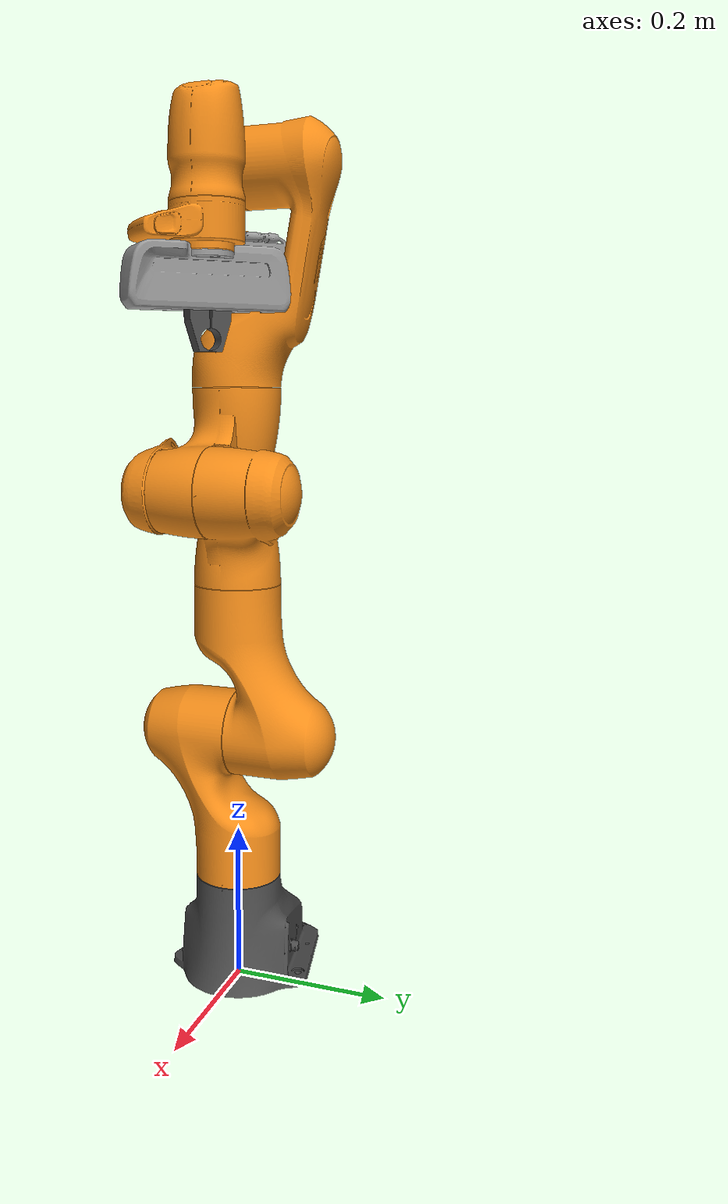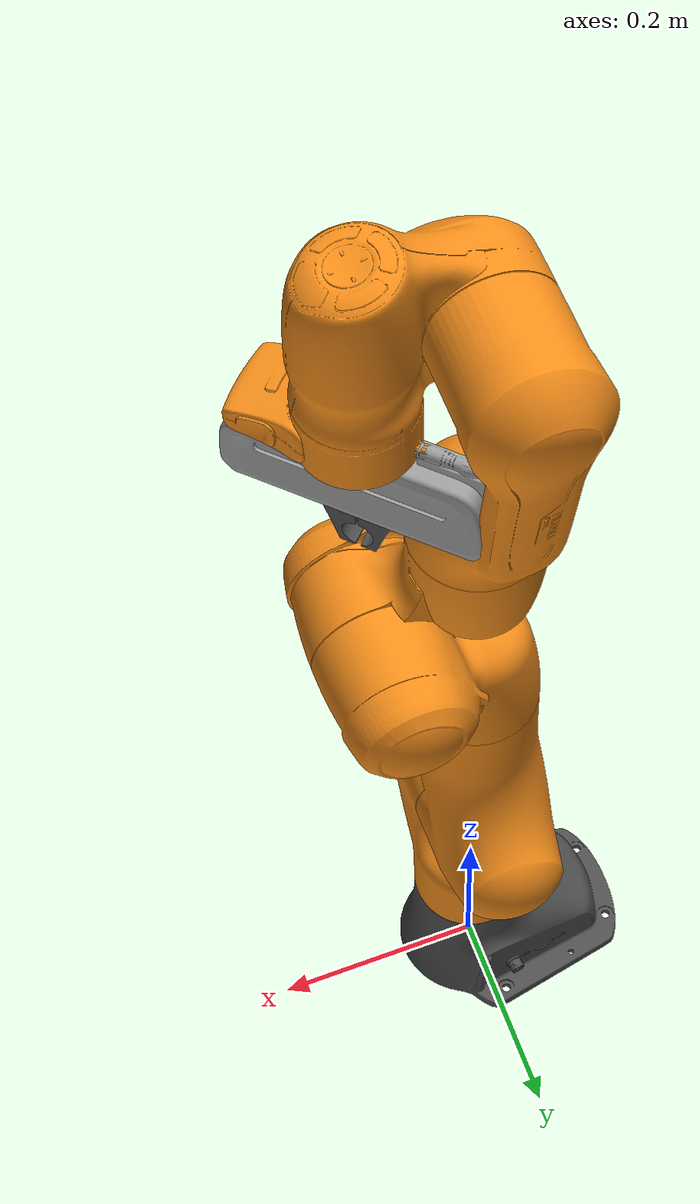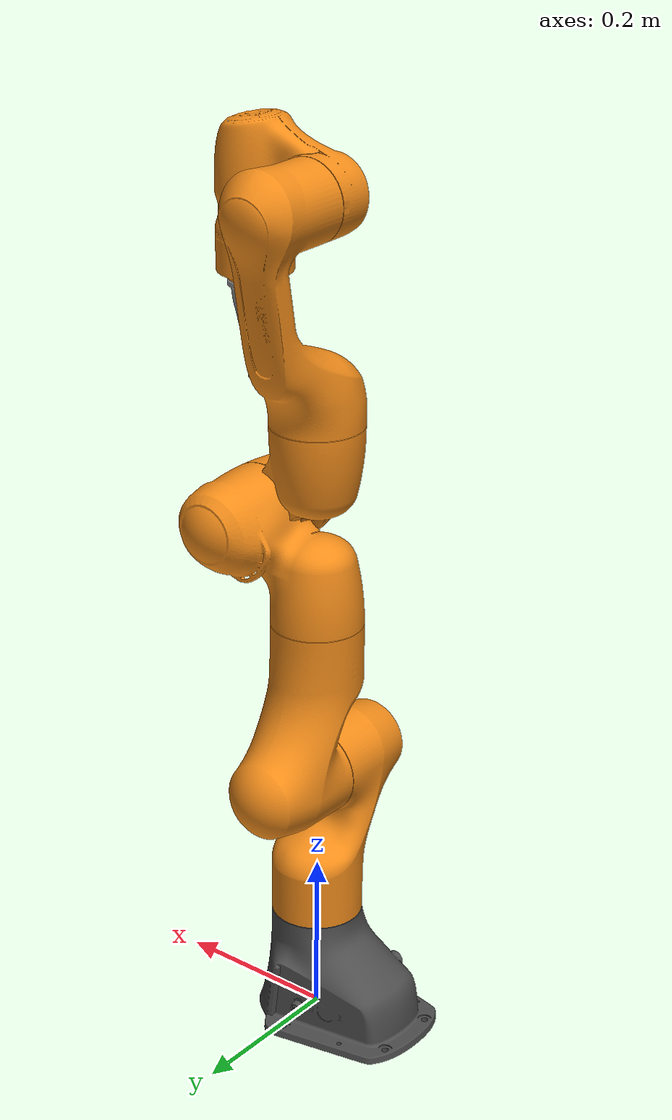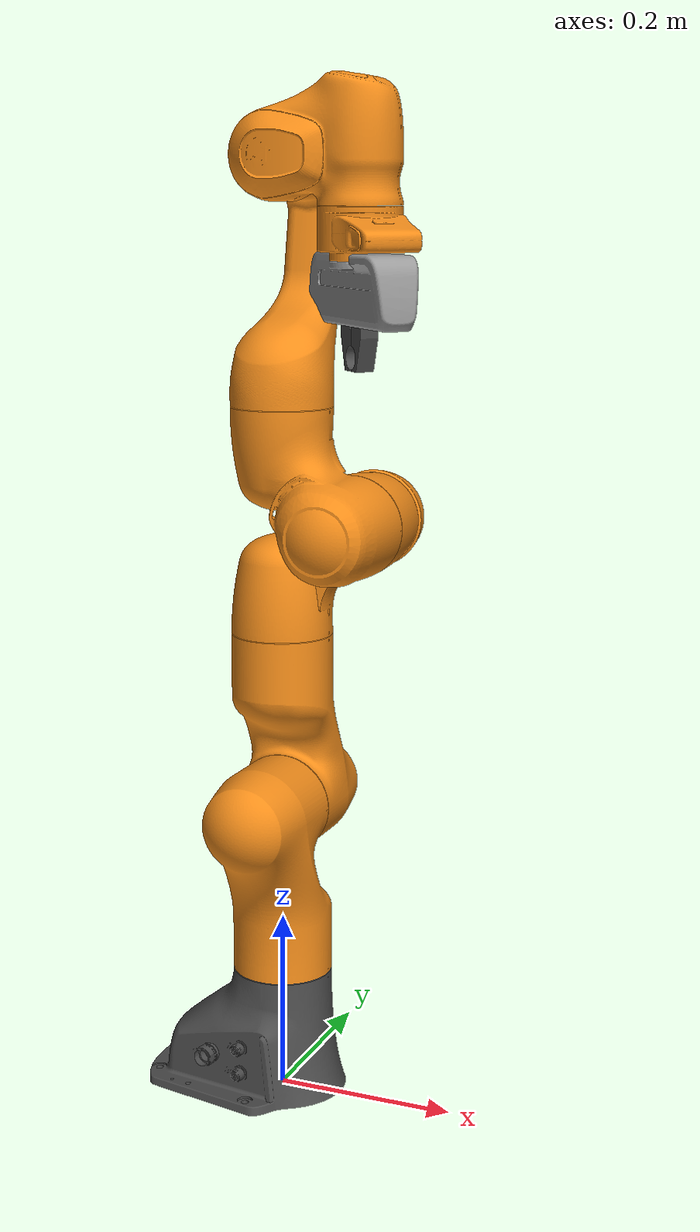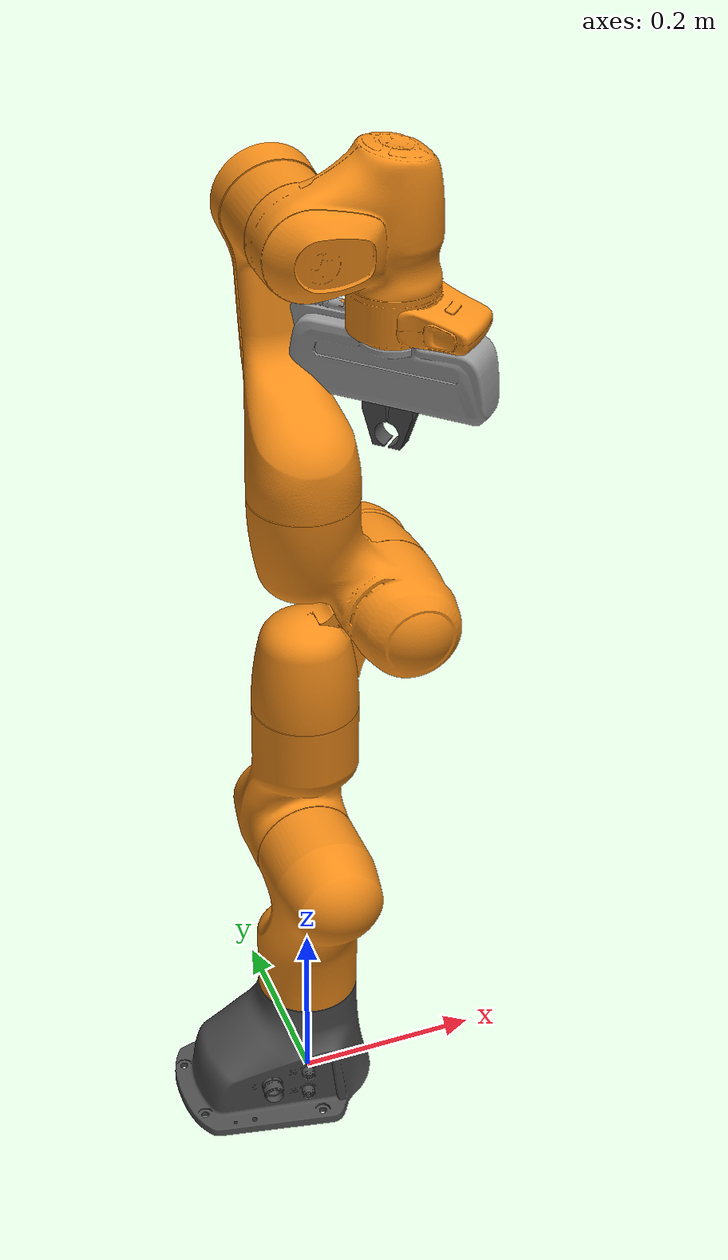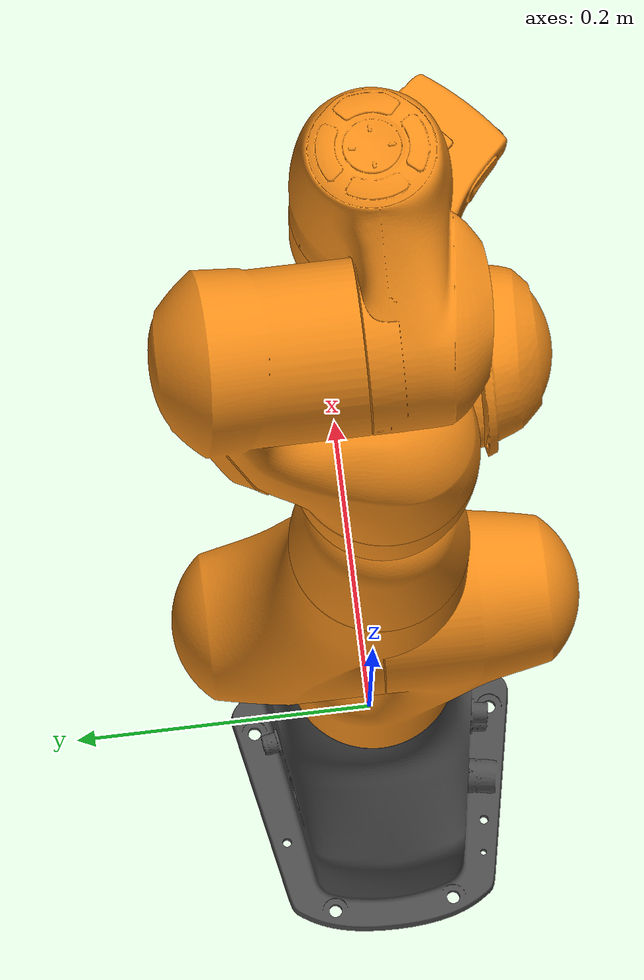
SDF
<?xml version="1.0"?>
<sdf version='1.7'>
  <model name='panda'>
    <joint name='panda_joint_world' type='fixed'>
      <pose relative_to='__model__'>0 0 0 0 -0 0</pose>
      <parent>world</parent>
      <child>panda_link0</child>
    </joint>
    <link name='panda_link0'>
      <pose relative_to='panda_joint_world'>0 0 0 0 -0 0</pose>
      <inertial>
        <pose>-0.025566 -2.9e-05 0.057332 0 -0 0</pose>
        <mass>2.81427</mass>
        <inertia>
          <ixx>0.00753906</ixx>
          <ixy>-1.50531e-05</ixy>
          <ixz>-0.00121443</ixz>
          <iyy>0.010508</iyy>
          <iyz>1.04348e-05</iyz>
          <izz>0.00986493</izz>
        </inertia>
      </inertial>
      <collision name='panda_link0_collision_collision'>
        <pose>0 0 0 0 -0 0</pose>
        <geometry>
          <mesh>
            <scale>1 1 1</scale>
            <uri>model://robot_description/meshes/collision/link0.stl</uri>
          </mesh>
        </geometry>
        <surface>
          <contact>
            <ode/>
          </contact>
          <friction>
            <ode>
              <mu>1.05</mu>
              <mu2>1.05</mu2>
            </ode>
          </friction>
        </surface>
      </collision>
      <visual name='panda_link0_visual_visual'>
        <pose>0 0 0 0 -0 0</pose>
        <geometry>
          <mesh>
            <scale>1 1 1</scale>
            <uri>model://robot_description/meshes/visual/link0.dae</uri>
          </mesh>
        </geometry>
        <material>
          <script>
            <name>Gazebo/DarkGrey</name>
            <uri>file://media/materials/scripts/gazebo.material</uri>
          </script>
        </material>
      </visual>
      <gravity>1</gravity>
      <velocity_decay/>
    </link>
    <joint name='panda_joint1' type='revolute'>
      <pose relative_to='panda_link0'>0 0 0.333 0 -0 0</pose>
      <parent>panda_link0</parent>
      <child>panda_link1</child>
      <axis>
        <xyz>0 0 1</xyz>
        <limit>
          <lower>-2.89725</lower>
          <upper>2.89725</upper>
          <effort>87</effort>
          <velocity>2.61799</velocity>
        </limit>
        <dynamics>
          <damping>21.75</damping>
          <friction>3.48</friction>
          <spring_reference>0</spring_reference>
          <spring_stiffness>0</spring_stiffness>
        </dynamics>
      </axis>
    </joint>
    <link name='panda_link1'>
      <pose relative_to='panda_joint1'>0 0 0 0 -0 0</pose>
      <inertial>
        <pose>-0 -0.032496 -0.067582 0 -0 0</pose>
        <mass>2.64332</mass>
        <inertia>
          <ixx>0.0174051</ixx>
          <ixy>-8.68799e-09</ixy>
          <ixz>-1.62778e-08</ixz>
          <iyy>0.0153521</iyy>
          <iyz>0.00451086</iyz>
          <izz>0.00598789</izz>
        </inertia>
      </inertial>
      <collision name='panda_link1_collision_collision'>
        <pose>0 0 0 0 -0 0</pose>
        <geometry>
          <mesh>
            <scale>1 1 1</scale>
            <uri>model://robot_description/meshes/collision/link1.stl</uri>
          </mesh>
        </geometry>
        <surface>
          <contact>
            <ode/>
          </contact>
          <friction>
            <ode>
              <mu>1.05</mu>
              <mu2>1.05</mu2>
            </ode>
          </friction>
        </surface>
      </collision>
      <visual name='panda_link1_visual_visual'>
        <pose>0 0 0 0 -0 0</pose>
        <geometry>
          <mesh>
            <scale>1 1 1</scale>
            <uri>model://robot_description/meshes/visual/link1.dae</uri>
          </mesh>
        </geometry>
        <material>
          <script>
            <name>Gazebo/Orange</name>
            <uri>file://media/materials/scripts/gazebo.material</uri>
          </script>
        </material>
      </visual>
      <gravity>1</gravity>
      <velocity_decay/>
    </link>
    <joint name='panda_joint2' type='revolute'>
      <pose relative_to='panda_link1'>0 0 0 -1.5708 0 0</pose>
      <parent>panda_link1</parent>
      <child>panda_link2</child>
      <axis>
        <xyz>0 0 1</xyz>
        <limit>
          <lower>-1.76278</lower>
          <upper>1.76278</upper>
          <effort>87</effort>
          <velocity>2.61799</velocity>
        </limit>
        <dynamics>
          <damping>21.75</damping>
          <friction>3.48</friction>
          <spring_reference>0</spring_reference>
          <spring_stiffness>0</spring_stiffness>
        </dynamics>
      </axis>
    </joint>
    <link name='panda_link2'>
      <pose relative_to='panda_joint2'>0 0 0 0 -0 0</pose>
      <inertial>
        <pose>0 -0.06861 0.032229 0 -0 0</pose>
        <mass>2.66528</mass>
        <inertia>
          <ixx>0.0177869</ixx>
          <ixy>8.70636e-08</ixy>
          <ixz>3.75207e-08</ixz>
          <iyy>0.00604413</iyy>
          <iyz>-0.00459949</iyz>
          <izz>0.015711</izz>
        </inertia>
      </inertial>
      <collision name='panda_link2_collision_collision'>
        <pose>0 0 0 0 -0 0</pose>
        <geometry>
          <mesh>
            <scale>1 1 1</scale>
            <uri>model://robot_description/meshes/collision/link2.stl</uri>
          </mesh>
        </geometry>
        <surface>
          <contact>
            <ode/>
          </contact>
          <friction>
            <ode>
              <mu>1.05</mu>
              <mu2>1.05</mu2>
            </ode>
          </friction>
        </surface>
      </collision>
      <visual name='panda_link2_visual_visual'>
        <pose>0 0 0 0 -0 0</pose>
        <geometry>
          <mesh>
            <scale>1 1 1</scale>
            <uri>model://robot_description/meshes/visual/link2.dae</uri>
          </mesh>
        </geometry>
        <material>
          <script>
            <name>Gazebo/Orange</name>
            <uri>file://media/materials/scripts/gazebo.material</uri>
          </script>
        </material>
      </visual>
      <gravity>1</gravity>
      <velocity_decay/>
    </link>
    <joint name='panda_joint3' type='revolute'>
      <pose relative_to='panda_link2'>0 -0.316 0 1.5708 -0 0</pose>
      <parent>panda_link2</parent>
      <child>panda_link3</child>
      <axis>
        <xyz>0 0 1</xyz>
        <limit>
          <lower>-2.89725</lower>
          <upper>2.89725</upper>
          <effort>87</effort>
          <velocity>2.61799</velocity>
        </limit>
        <dynamics>
          <damping>21.75</damping>
          <friction>3.48</friction>
          <spring_reference>0</spring_reference>
          <spring_stiffness>0</spring_stiffness>
        </dynamics>
      </axis>
    </joint>
    <link name='panda_link3'>
      <pose relative_to='panda_joint3'>0 0 0 0 -0 0</pose>
      <inertial>
        <pose>0.046989 0.031637 -0.031704 0 -0 0</pose>
        <mass>2.32937</mass>
        <inertia>
          <ixx>0.00754968</ixx>
          <ixy>-0.00243205</ixy>
          <ixz>-0.00325082</ixz>
          <iyy>0.00968068</iyy>
          <iyz>-0.00213163</iyz>
          <izz>0.00794456</izz>
        </inertia>
      </inertial>
      <collision name='panda_link3_collision_collision'>
        <pose>0 0 0 0 -0 0</pose>
        <geometry>
          <mesh>
            <scale>1 1 1</scale>
            <uri>model://robot_description/meshes/collision/link3.stl</uri>
          </mesh>
        </geometry>
        <surface>
          <contact>
            <ode/>
          </contact>
          <friction>
            <ode>
              <mu>1.05</mu>
              <mu2>1.05</mu2>
            </ode>
          </friction>
        </surface>
      </collision>
      <visual name='panda_link3_visual_visual'>
        <pose>0 0 0 0 -0 0</pose>
        <geometry>
          <mesh>
            <scale>1 1 1</scale>
            <uri>model://robot_description/meshes/visual/link3.dae</uri>
          </mesh>
        </geometry>
        <material>
          <script>
            <name>Gazebo/Orange</name>
            <uri>file://media/materials/scripts/gazebo.material</uri>
          </script>
        </material>
      </visual>
      <gravity>1</gravity>
      <velocity_decay/>
    </link>
    <joint name='panda_joint4' type='revolute'>
      <pose relative_to='panda_link3'>0.0825 0 0 1.5708 -0 0</pose>
      <parent>panda_link3</parent>
      <child>panda_link4</child>
      <axis>
        <xyz>0 0 1</xyz>
        <limit>
          <lower>-3.07178</lower>
          <upper>-0.0698132</upper>
          <effort>87</effort>
          <velocity>2.61799</velocity>
        </limit>
        <dynamics>
          <damping>21.75</damping>
          <friction>3.48</friction>
          <spring_reference>0</spring_reference>
          <spring_stiffness>0</spring_stiffness>
        </dynamics>
      </axis>
    </joint>
    <link name='panda_link4'>
      <pose relative_to='panda_joint4'>0 0 0 0 -0 0</pose>
      <inertial>
        <pose>-0.036051 0.033707 0.031902 0 -0 0</pose>
        <mass>2.31048</mass>
        <inertia>
          <ixx>0.00776457</ixx>
          <ixy>0.00337148</ixy>
          <ixz>-0.00234362</ixz>
          <iyy>0.00801578</iyy>
          <iyz>0.00229175</iyz>
          <izz>0.00995588</izz>
        </inertia>
      </inertial>
      <collision name='panda_link4_collision_collision'>
        <pose>0 0 0 0 -0 0</pose>
        <geometry>
          <mesh>
            <scale>1 1 1</scale>
            <uri>model://robot_description/meshes/collision/link4.stl</uri>
          </mesh>
        </geometry>
        <surface>
          <contact>
            <ode/>
          </contact>
          <friction>
            <ode>
              <mu>1.05</mu>
              <mu2>1.05</mu2>
            </ode>
          </friction>
        </surface>
      </collision>
      <visual name='panda_link4_visual_visual'>
        <pose>0 0 0 0 -0 0</pose>
        <geometry>
          <mesh>
            <scale>1 1 1</scale>
            <uri>model://robot_description/meshes/visual/link4.dae</uri>
          </mesh>
        </geometry>
        <material>
          <script>
            <name>Gazebo/Orange</name>
            <uri>file://media/materials/scripts/gazebo.material</uri>
          </script>
        </material>
      </visual>
      <gravity>1</gravity>
      <velocity_decay/>
    </link>
    <joint name='panda_joint5' type='revolute'>
      <pose relative_to='panda_link4'>-0.0825 0.384 0 -1.5708 0 0</pose>
      <parent>panda_link4</parent>
      <child>panda_link5</child>
      <axis>
        <xyz>0 0 1</xyz>
        <limit>
          <lower>-2.89725</lower>
          <upper>2.89725</upper>
          <effort>12</effort>
          <velocity>3.14159</velocity>
        </limit>
        <dynamics>
          <damping>3</damping>
          <friction>0.48</friction>
          <spring_reference>0</spring_reference>
          <spring_stiffness>0</spring_stiffness>
        </dynamics>
      </axis>
    </joint>
    <link name='panda_link5'>
      <pose relative_to='panda_joint5'>0 0 0 0 -0 0</pose>
      <inertial>
        <pose>-6e-06 0.061043 -0.104176 0 -0 0</pose>
        <mass>2.62264</mass>
        <inertia>
          <ixx>0.0290705</ixx>
          <ixy>6.20874e-07</ixy>
          <ixz>-1.00592e-05</ixz>
          <iyy>0.0276385</iyy>
          <iyz>-0.00742431</iyz>
          <izz>0.00425111</izz>
        </inertia>
      </inertial>
      <collision name='panda_link5_collision_collision'>
        <pose>0 0 0 0 -0 0</pose>
        <geometry>
          <mesh>
            <scale>1 1 1</scale>
            <uri>model://robot_description/meshes/collision/link5.stl</uri>
          </mesh>
        </geometry>
        <surface>
          <contact>
            <ode/>
          </contact>
          <friction>
            <ode>
              <mu>1.05</mu>
              <mu2>1.05</mu2>
            </ode>
          </friction>
        </surface>
      </collision>
      <visual name='panda_link5_visual_visual'>
        <pose>0 0 0 0 -0 0</pose>
        <geometry>
          <mesh>
            <scale>1 1 1</scale>
            <uri>model://robot_description/meshes/visual/link5.dae</uri>
          </mesh>
        </geometry>
        <material>
          <script>
            <name>Gazebo/Orange</name>
            <uri>file://media/materials/scripts/gazebo.material</uri>
          </script>
        </material>
      </visual>
      <gravity>1</gravity>
      <velocity_decay/>
    </link>
    <joint name='panda_joint6' type='revolute'>
      <pose relative_to='panda_link5'>0 0 0 1.5708 -0 0</pose>
      <parent>panda_link5</parent>
      <child>panda_link6</child>
      <axis>
        <xyz>0 0 1</xyz>
        <limit>
          <lower>-0.0174533</lower>
          <upper>3.75246</upper>
          <effort>12</effort>
          <velocity>3.14159</velocity>
        </limit>
        <dynamics>
          <damping>3</damping>
          <friction>0.48</friction>
          <spring_reference>0</spring_reference>
          <spring_stiffness>0</spring_stiffness>
        </dynamics>
      </axis>
    </joint>
    <link name='panda_link6'>
      <pose relative_to='panda_joint6'>0 0 0 0 -0 0</pose>
      <inertial>
        <pose>0 0 0 0 -0 0</pose>
        <mass>1.50258</mass>
        <inertia>
          <ixx>0.00294056</ixx>
          <ixy>-0.000423911</ixy>
          <ixz>0.000610008</ixz>
          <iyy>0.00392105</iyy>
          <iyz>0.000126475</iyz>
          <izz>0.00541156</izz>
        </inertia>
      </inertial>
      <collision name='panda_link6_collision_collision'>
        <pose>0 0 0 0 -0 0</pose>
        <geometry>
          <mesh>
            <scale>1 1 1</scale>
            <uri>model://robot_description/meshes/collision/link6.stl</uri>
          </mesh>
        </geometry>
        <surface>
          <contact>
            <ode/>
          </contact>
          <friction>
            <ode>
              <mu>1.05</mu>
              <mu2>1.05</mu2>
            </ode>
          </friction>
        </surface>
      </collision>
      <visual name='panda_link6_visual_visual'>
        <pose>0 0 0 0 -0 0</pose>
        <geometry>
          <mesh>
            <scale>1 1 1</scale>
            <uri>model://robot_description/meshes/visual/link6.dae</uri>
          </mesh>
        </geometry>
        <material>
          <script>
            <name>Gazebo/Orange</name>
            <uri>file://media/materials/scripts/gazebo.material</uri>
          </script>
        </material>
      </visual>
      <gravity>1</gravity>
      <velocity_decay/>
    </link>
    <joint name='panda_joint7' type='revolute'>
      <pose relative_to='panda_link6'>0.088 0 0 1.5708 -0 0</pose>
      <parent>panda_link6</parent>
      <child>panda_link7</child>
      <axis>
        <xyz>0 0 1</xyz>
        <limit>
          <lower>-2.89725</lower>
          <upper>2.89725</upper>
          <effort>12</effort>
          <velocity>3.14159</velocity>
        </limit>
        <dynamics>
          <damping>3</damping>
          <friction>0.48</friction>
          <spring_reference>0</spring_reference>
          <spring_stiffness>0</spring_stiffness>
        </dynamics>
      </axis>
    </joint>
    <link name='panda_link7'>
      <pose relative_to='panda_joint7'>0 0 0 0 -0 0</pose>
      <inertial>
        <pose>0.008875 0.008741 0.079761 0 -0 0</pose>
        <mass>0.664374</mass>
        <inertia>
          <ixx>0.00171562</ixx>
          <ixy>-0.000359114</ixy>
          <ixz>0.00011498</ixz>
          <iyy>0.00171515</iyy>
          <iyz>-1.56392e-05</iyz>
          <izz>0.00121125</izz>
        </inertia>
      </inertial>
      <collision name='panda_link7_collision_collision'>
        <pose>0 0 0 0 -0 0</pose>
        <geometry>
          <mesh>
            <scale>1 1 1</scale>
            <uri>model://robot_description/meshes/collision/link7.stl</uri>
          </mesh>
        </geometry>
        <surface>
          <contact>
            <ode/>
          </contact>
          <friction>
            <ode>
              <mu>1.05</mu>
              <mu2>1.05</mu2>
            </ode>
          </friction>
        </surface>
      </collision>
      <collision name='panda_link7_fixed_joint_lump__panda_hand_collision_collision_1'>
        <pose>0 0 0.107 0 0 -0.785398</pose>
        <geometry>
          <mesh>
            <scale>1 1 1</scale>
            <uri>model://robot_description/meshes/collision/hand.stl</uri>
          </mesh>
        </geometry>
        <surface>
          <contact>
            <ode/>
          </contact>
          <friction>
            <ode>
              <mu>1.05</mu>
              <mu2>1.05</mu2>
            </ode>
          </friction>
        </surface>
      </collision>
      <visual name='panda_link7_visual_visual'>
        <pose>0 0 0 0 -0 0</pose>
        <geometry>
          <mesh>
            <scale>1 1 1</scale>
            <uri>model://robot_description/meshes/visual/link7.dae</uri>
          </mesh>
        </geometry>
        <material>
          <script>
            <name>Gazebo/Orange</name>
            <uri>file://media/materials/scripts/gazebo.material</uri>
          </script>
        </material>
      </visual>
      <visual name='panda_link7_fixed_joint_lump__panda_hand_visual_visual_1'>
        <pose>0 0 0.107 0 0 -0.785398</pose>
        <geometry>
          <mesh>
            <scale>1 1 1</scale>
            <uri>model://robot_description/meshes/visual/hand.dae</uri>
          </mesh>
        </geometry>
        <material>
          <script>
            <name>Gazebo/Grey</name>
            <uri>file://media/materials/scripts/gazebo.material</uri>
          </script>
        </material>
      </visual>
      <velocity_decay/>
      <gravity>1</gravity>
      <velocity_decay/>
    </link>
    <joint name='panda_finger_joint1' type='prismatic'>
      <pose relative_to='panda_link7'>0 0 0.1654 0 0 -0.785398</pose>
      <parent>panda_link7</parent>
      <child>panda_leftfinger</child>
      <axis>
        <xyz>0 1 0</xyz>
        <limit>
          <lower>0</lower>
          <upper>0.04</upper>
          <effort>20</effort>
          <velocity>0.2</velocity>
        </limit>
        <dynamics>
          <damping>10</damping>
          <friction>0.5</friction>
          <spring_reference>0</spring_reference>
          <spring_stiffness>0</spring_stiffness>
        </dynamics>
      </axis>
    </joint>
    <link name='panda_leftfinger'>
      <pose relative_to='panda_finger_joint1'>0 0 0 0 -0 0</pose>
      <inertial>
        <pose>-6e-06 0.002278 -0.027712 0 -0 0</pose>
        <mass>0.223845</mass>
        <inertia>
          <ixx>6.74804e-05</ixx>
          <ixy>-4.10274e-09</ixy>
          <ixz>1.86937e-08</ixz>
          <iyy>6.62719e-05</iyy>
          <iyz>1.19675e-05</iyz>
          <izz>1.5504e-05</izz>
        </inertia>
      </inertial>
      <collision name='panda_leftfinger_collision_collision'>
        <pose>0 0 0 0 -0 0</pose>
        <geometry>
          <mesh>
            <scale>1 1 1</scale>
            <uri>model://robot_description/meshes/collision/finger.stl</uri>
          </mesh>
        </geometry>
        <surface>
          <contact>
            <ode/>
          </contact>
          <friction>
            <ode>
              <mu>1.05</mu>
              <mu2>1.05</mu2>
            </ode>
          </friction>
        </surface>
      </collision>
      <visual name='panda_leftfinger_visual_visual'>
        <pose>0 0 0 0 -0 0</pose>
        <geometry>
          <mesh>
            <scale>1 1 1</scale>
            <uri>model://robot_description/meshes/visual/finger.dae</uri>
          </mesh>
        </geometry>
        <material>
          <script>
            <name>Gazebo/DarkGrey</name>
            <uri>file://media/materials/scripts/gazebo.material</uri>
          </script>
        </material>
      </visual>
      <gravity>1</gravity>
      <velocity_decay/>
    </link>
    <joint name='panda_finger_joint2' type='prismatic'>
      <pose relative_to='panda_link7'>0 0 0.1654 0 0 -0.785398</pose>
      <parent>panda_link7</parent>
      <child>panda_rightfinger</child>
      <axis>
        <xyz>0 -1 0</xyz>
        <limit>
          <lower>0</lower>
          <upper>0.04</upper>
          <effort>20</effort>
          <velocity>0.2</velocity>
        </limit>
        <dynamics>
          <damping>10</damping>
          <friction>0.5</friction>
          <spring_reference>0</spring_reference>
          <spring_stiffness>0</spring_stiffness>
        </dynamics>
      </axis>
    </joint>
    <link name='panda_rightfinger'>
      <pose relative_to='panda_finger_joint2'>0 0 0 0 -0 0</pose>
      <inertial>
        <pose>-6e-06 0.002278 -0.027712 0 -0 3.14159</pose>
        <mass>0.223845</mass>
        <inertia>
          <ixx>6.74804e-05</ixx>
          <ixy>-4.10274e-09</ixy>
          <ixz>1.86937e-08</ixz>
          <iyy>6.62719e-05</iyy>
          <iyz>1.19675e-05</iyz>
          <izz>1.5504e-05</izz>
        </inertia>
      </inertial>
      <collision name='panda_rightfinger_collision_collision'>
        <pose>0 0 0 0 -0 3.14159</pose>
        <geometry>
          <mesh>
            <scale>1 1 1</scale>
            <uri>model://robot_description/meshes/collision/finger.stl</uri>
          </mesh>
        </geometry>
        <surface>
          <contact>
            <ode/>
          </contact>
          <friction>
            <ode>
              <mu>1.05</mu>
              <mu2>1.05</mu2>
            </ode>
          </friction>
        </surface>
      </collision>
      <visual name='panda_rightfinger_visual_visual'>
        <pose>0 0 0 0 -0 3.14159</pose>
        <geometry>
          <mesh>
            <scale>1 1 1</scale>
            <uri>model://robot_description/meshes/visual/finger.dae</uri>
          </mesh>
        </geometry>
        <material>
          <script>
            <name>Gazebo/DarkGrey</name>
            <uri>file://media/materials/scripts/gazebo.material</uri>
          </script>
        </material>
      </visual>
      <gravity>1</gravity>
      <velocity_decay/>
    </link>
  </model>
</sdf>
